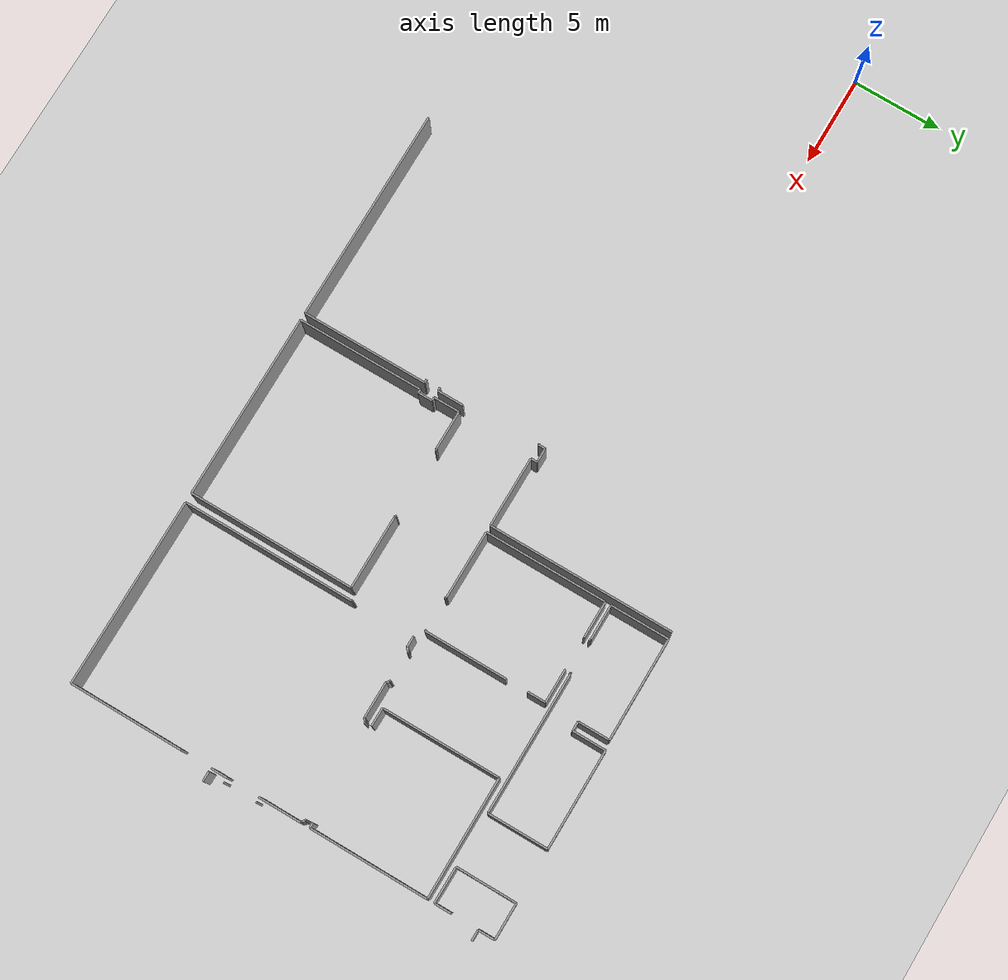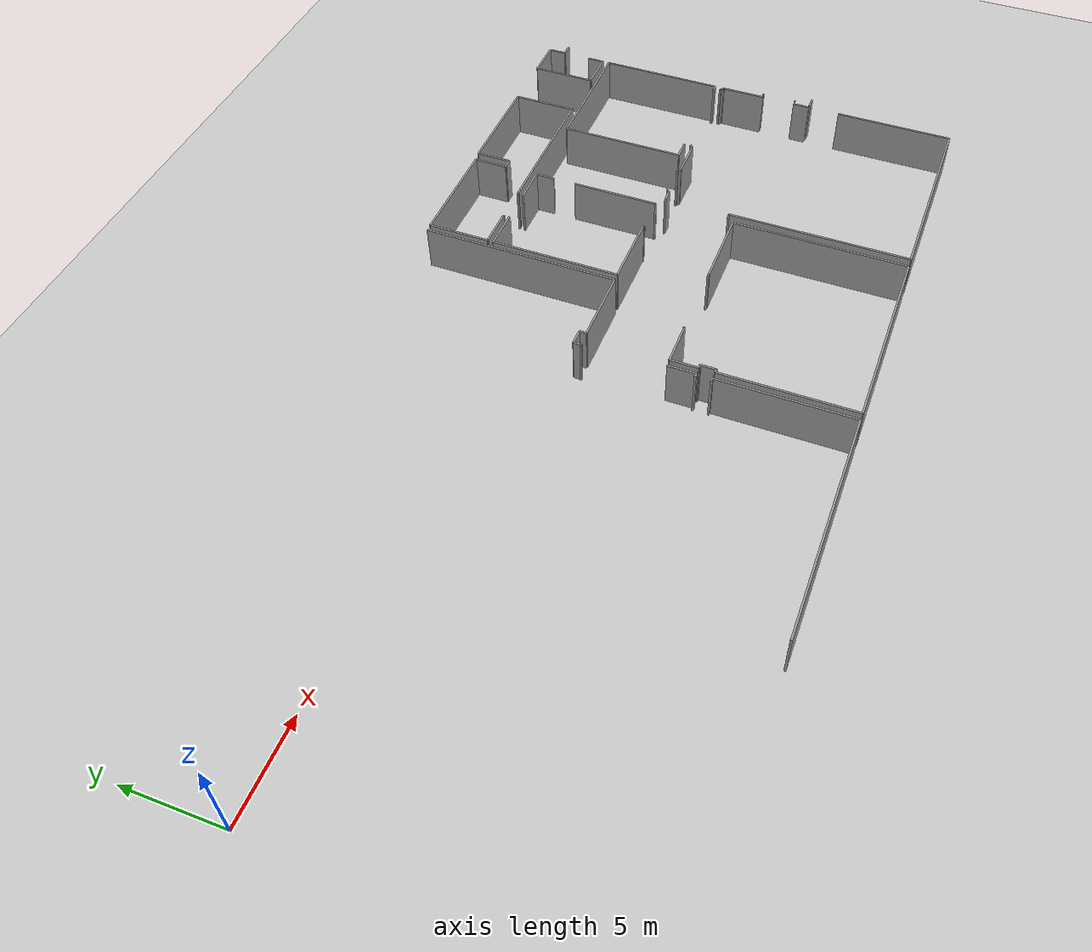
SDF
<sdf version="1.6">
 <world name="default">
  <model name="ground_plane">
   <static>1</static>
   <link name="link">
    <collision name="collision">
     <geometry><plane><normal>0 0 1</normal><size>100 100</size></plane></geometry>
     <surface><friction><ode><mu>100</mu><mu2>50</mu2></ode></friction></surface>
    </collision>
    <visual name="visual">
     <cast_shadows>0</cast_shadows>
     <geometry><plane><normal>0 0 1</normal><size>100 100</size></plane></geometry>
     <material>
      <script><uri>file://media/materials/scripts/gazebo.material</uri><name>Gazebo/Grey</name></script>
     </material>
    </visual>
   </link>
  </model>
  <model name="0510030939_A_40_1_103">
   <static>1</static>
   <link name="Wall_137">
    <collision name="Wall_137_Collision">
     <geometry><box><size>10.3824379706 0.1 2.5</size></box></geometry>
     <pose>5.19121898529 0 1.25 0 0 0</pose>
    </collision>
    <visual name="Wall_137_Visual">
     <pose>5.19121898529 0 1.25 0 0 0</pose>
     <geometry><box><size>10.3824379706 0.1 2.5</size></box></geometry>
     <material>
      <script><uri>file://media/materials/scripts/gazebo.material</uri><name>Gazebo/Grey</name></script>
      <ambient>1 1 1 1</ambient>
     </material>
    </visual>
    <pose>87.8816024399 -11.3761794326 0 0 0 -1.57079632679</pose>
   </link>
   <link name="Wall_138">
    <collision name="Wall_138_Collision">
     <geometry><box><size>3.91701877561 0.1 2.5</size></box></geometry>
     <pose>1.95850938781 0 1.25 0 0 0</pose>
    </collision>
    <visual name="Wall_138_Visual">
     <pose>1.95850938781 0 1.25 0 0 0</pose>
     <geometry><box><size>3.91701877561 0.1 2.5</size></box></geometry>
     <material>
      <script><uri>file://media/materials/scripts/gazebo.material</uri><name>Gazebo/Grey</name></script>
      <ambient>1 1 1 1</ambient>
     </material>
    </visual>
    <pose>87.8816024399 -21.7586174032 0 0 0 3.14159265359</pose>
   </link>
   <link name="Wall_139">
    <collision name="Wall_139_Collision">
     <geometry><box><size>0.358992280078 0.1 2.5</size></box></geometry>
     <pose>0.179496140039 0 1.25 0 0 0</pose>
    </collision>
    <visual name="Wall_139_Visual">
     <pose>0.179496140039 0 1.25 0 0 0</pose>
     <geometry><box><size>0.358992280078 0.1 2.5</size></box></geometry>
     <material>
      <script><uri>file://media/materials/scripts/gazebo.material</uri><name>Gazebo/Grey</name></script>
      <ambient>1 1 1 1</ambient>
     </material>
    </visual>
    <pose>83.9645836643 -21.7586174032 0 0 0 1.57079632679</pose>
   </link>
   <link name="Wall_140">
    <collision name="Wall_140_Collision">
     <geometry><box><size>0.791562092957 0.1 2.5</size></box></geometry>
     <pose>0.395781046478 0 1.25 0 0 0</pose>
    </collision>
    <visual name="Wall_140_Visual">
     <pose>0.395781046478 0 1.25 0 0 0</pose>
     <geometry><box><size>0.791562092957 0.1 2.5</size></box></geometry>
     <material>
      <script><uri>file://media/materials/scripts/gazebo.material</uri><name>Gazebo/Grey</name></script>
      <ambient>1 1 1 1</ambient>
     </material>
    </visual>
    <pose>83.9645836643 -21.3996251231 0 0 0 3.14159265359</pose>
   </link>
   <link name="Wall_141">
    <collision name="Wall_141_Collision">
     <geometry><box><size>0.39063443149 0.1 2.5</size></box></geometry>
     <pose>0.195317215745 0 1.25 0 0 0</pose>
    </collision>
    <visual name="Wall_141_Visual">
     <pose>0.195317215745 0 1.25 0 0 0</pose>
     <geometry><box><size>0.39063443149 0.1 2.5</size></box></geometry>
     <material>
      <script><uri>file://media/materials/scripts/gazebo.material</uri><name>Gazebo/Grey</name></script>
      <ambient>1 1 1 1</ambient>
     </material>
    </visual>
    <pose>83.1730215713 -21.3996251231 0 0 0 -1.57079632679</pose>
   </link>
   <link name="Wall_142">
    <collision name="Wall_142_Collision">
     <geometry><box><size>0.0787876862471 0.1 2.5</size></box></geometry>
     <pose>0.0393938431236 0 1.25 0 0 0</pose>
    </collision>
    <visual name="Wall_142_Visual">
     <pose>0.0393938431236 0 1.25 0 0 0</pose>
     <geometry><box><size>0.0787876862471 0.1 2.5</size></box></geometry>
     <material>
      <script><uri>file://media/materials/scripts/gazebo.material</uri><name>Gazebo/Grey</name></script>
      <ambient>1 1 1 1</ambient>
     </material>
    </visual>
    <pose>83.1730215713 -21.7902595546 0 0 0 3.14159265359</pose>
   </link>
   <link name="Wall_158">
    <collision name="Wall_158_Collision">
     <geometry><box><size>1.45579311879 0.1 2.5</size></box></geometry>
     <pose>0.727896559393 0 1.25 0 0 0</pose>
    </collision>
    <visual name="Wall_158_Visual">
     <pose>0.727896559393 0 1.25 0 0 0</pose>
     <geometry><box><size>1.45579311879 0.1 2.5</size></box></geometry>
     <material>
      <script><uri>file://media/materials/scripts/gazebo.material</uri><name>Gazebo/Grey</name></script>
      <ambient>1 1 1 1</ambient>
     </material>
    </visual>
    <pose>83.3735489405 -26.0428884582 0 0 0 -1.57079632679</pose>
   </link>
   <link name="Wall_159">
    <collision name="Wall_159_Collision">
     <geometry><box><size>0.206499984115 0.1 2.5</size></box></geometry>
     <pose>0.103249992058 0 1.25 0 0 0</pose>
    </collision>
    <visual name="Wall_159_Visual">
     <pose>0.103249992058 0 1.25 0 0 0</pose>
     <geometry><box><size>0.206499984115 0.1 2.5</size></box></geometry>
     <material>
      <script><uri>file://media/materials/scripts/gazebo.material</uri><name>Gazebo/Grey</name></script>
      <ambient>1 1 1 1</ambient>
     </material>
    </visual>
    <pose>83.3735489405 -27.498681577 0 0 0 3.14159265359</pose>
   </link>
   <link name="Wall_161">
    <collision name="Wall_161_Collision">
     <geometry><box><size>0.191504908346 0.1 2.5</size></box></geometry>
     <pose>0.0957524541729 0 1.25 0 0 0</pose>
    </collision>
    <visual name="Wall_161_Visual">
     <pose>0.0957524541729 0 1.25 0 0 0</pose>
     <geometry><box><size>0.191504908346 0.1 2.5</size></box></geometry>
     <material>
      <script><uri>file://media/materials/scripts/gazebo.material</uri><name>Gazebo/Grey</name></script>
      <ambient>1 1 1 1</ambient>
     </material>
    </visual>
    <pose>83.1670489564 -28.2861772088 0 0 0 0.0</pose>
   </link>
   <link name="Wall_162">
    <collision name="Wall_162_Collision">
     <geometry><box><size>7.01083330686 0.1 2.5</size></box></geometry>
     <pose>3.50541665343 0 1.25 0 0 0</pose>
    </collision>
    <visual name="Wall_162_Visual">
     <pose>3.50541665343 0 1.25 0 0 0</pose>
     <geometry><box><size>7.01083330686 0.1 2.5</size></box></geometry>
     <material>
      <script><uri>file://media/materials/scripts/gazebo.material</uri><name>Gazebo/Grey</name></script>
      <ambient>1 1 1 1</ambient>
     </material>
    </visual>
    <pose>83.3585538647 -28.2861772088 0 0 0 -1.57079632679</pose>
   </link>
   <link name="Wall_163">
    <collision name="Wall_163_Collision">
     <geometry><box><size>11.9762366718 0.1 2.5</size></box></geometry>
     <pose>5.98811833591 0 1.25 0 0 0</pose>
    </collision>
    <visual name="Wall_163_Visual">
     <pose>5.98811833591 0 1.25 0 0 0</pose>
     <geometry><box><size>11.9762366718 0.1 2.5</size></box></geometry>
     <material>
      <script><uri>file://media/materials/scripts/gazebo.material</uri><name>Gazebo/Grey</name></script>
      <ambient>1 1 1 1</ambient>
     </material>
    </visual>
    <pose>83.3585538647 -35.2970105156 0 0 0 -3.14149715679</pose>
   </link>
   <link name="Wall_164">
    <collision name="Wall_164_Collision">
     <geometry><box><size>7.02061822918 0.1 2.5</size></box></geometry>
     <pose>3.51030911459 0 1.25 0 0 0</pose>
    </collision>
    <visual name="Wall_164_Visual">
     <pose>3.51030911459 0 1.25 0 0 0</pose>
     <geometry><box><size>7.02061822918 0.1 2.5</size></box></geometry>
     <material>
      <script><uri>file://media/materials/scripts/gazebo.material</uri><name>Gazebo/Grey</name></script>
      <ambient>1 1 1 1</ambient>
     </material>
    </visual>
    <pose>83.7650729104 -35.3029831305 0 0 0 1.57079632679</pose>
   </link>
   <link name="Wall_165">
    <collision name="Wall_165_Collision">
     <geometry><box><size>0.189471677733 0.1 2.5</size></box></geometry>
     <pose>0.0947358388665 0 1.25 0 0 0</pose>
    </collision>
    <visual name="Wall_165_Visual">
     <pose>0.0947358388665 0 1.25 0 0 0</pose>
     <geometry><box><size>0.189471677733 0.1 2.5</size></box></geometry>
     <material>
      <script><uri>file://media/materials/scripts/gazebo.material</uri><name>Gazebo/Grey</name></script>
      <ambient>1 1 1 1</ambient>
     </material>
    </visual>
    <pose>83.7650729104 -28.2823649014 0 0 0 0.0</pose>
   </link>
   <link name="Wall_166">
    <collision name="Wall_166_Collision">
     <geometry><box><size>0.786860247165 0.1 2.5</size></box></geometry>
     <pose>0.393430123582 0 1.25 0 0 0</pose>
    </collision>
    <visual name="Wall_166_Visual">
     <pose>0.393430123582 0 1.25 0 0 0</pose>
     <geometry><box><size>0.786860247165 0.1 2.5</size></box></geometry>
     <material>
      <script><uri>file://media/materials/scripts/gazebo.material</uri><name>Gazebo/Grey</name></script>
      <ambient>1 1 1 1</ambient>
     </material>
    </visual>
    <pose>83.9545445881 -28.2823649014 0 0 0 1.57079632679</pose>
   </link>
   <link name="Wall_167">
    <collision name="Wall_167_Collision">
     <geometry><box><size>0.200400292277 0.1 2.5</size></box></geometry>
     <pose>0.100200146138 0 1.25 0 0 0</pose>
    </collision>
    <visual name="Wall_167_Visual">
     <pose>0.100200146138 0 1.25 0 0 0</pose>
     <geometry><box><size>0.200400292277 0.1 2.5</size></box></geometry>
     <material>
      <script><uri>file://media/materials/scripts/gazebo.material</uri><name>Gazebo/Grey</name></script>
      <ambient>1 1 1 1</ambient>
     </material>
    </visual>
    <pose>83.9545445881 -27.4955046542 0 0 0 3.14159265359</pose>
   </link>
   <link name="Wall_168">
    <collision name="Wall_168_Collision">
     <geometry><box><size>1.45096419608 0.1 2.5</size></box></geometry>
     <pose>0.72548209804 0 1.25 0 0 0</pose>
    </collision>
    <visual name="Wall_168_Visual">
     <pose>0.72548209804 0 1.25 0 0 0</pose>
     <geometry><box><size>1.45096419608 0.1 2.5</size></box></geometry>
     <material>
      <script><uri>file://media/materials/scripts/gazebo.material</uri><name>Gazebo/Grey</name></script>
      <ambient>1 1 1 1</ambient>
     </material>
    </visual>
    <pose>83.7541442958 -27.4955046542 0 0 0 1.57079632679</pose>
   </link>
   <link name="Wall_169">
    <collision name="Wall_169_Collision">
     <geometry><box><size>2.20376783048 0.1 2.5</size></box></geometry>
     <pose>1.10188391524 0 1.25 0 0 0</pose>
    </collision>
    <visual name="Wall_169_Visual">
     <pose>1.10188391524 0 1.25 0 0 0</pose>
     <geometry><box><size>2.20376783048 0.1 2.5</size></box></geometry>
     <material>
      <script><uri>file://media/materials/scripts/gazebo.material</uri><name>Gazebo/Grey</name></script>
      <ambient>1 1 1 1</ambient>
     </material>
    </visual>
    <pose>83.7541442958 -26.0445404581 0 0 0 0.0</pose>
   </link>
   <link name="Wall_170">
    <collision name="Wall_170_Collision">
     <geometry><box><size>0.0257966134003 0.1 2.5</size></box></geometry>
     <pose>0.0128983067001 0 1.25 0 0 0</pose>
    </collision>
    <visual name="Wall_170_Visual">
     <pose>0.0128983067001 0 1.25 0 0 0</pose>
     <geometry><box><size>0.0257966134003 0.1 2.5</size></box></geometry>
     <material>
      <script><uri>file://media/materials/scripts/gazebo.material</uri><name>Gazebo/Grey</name></script>
      <ambient>1 1 1 1</ambient>
     </material>
    </visual>
    <pose>85.9579121263 -26.0445404581 0 0 0 1.57079632679</pose>
   </link>
   <link name="Wall_171">
    <collision name="Wall_171_Collision">
     <geometry><box><size>0.0888267623979 0.1 2.5</size></box></geometry>
     <pose>0.044413381199 0 1.25 0 0 0</pose>
    </collision>
    <visual name="Wall_171_Visual">
     <pose>0.044413381199 0 1.25 0 0 0</pose>
     <geometry><box><size>0.0888267623979 0.1 2.5</size></box></geometry>
     <material>
      <script><uri>file://media/materials/scripts/gazebo.material</uri><name>Gazebo/Grey</name></script>
      <ambient>1 1 1 1</ambient>
     </material>
    </visual>
    <pose>85.9579121263 -26.0187438447 0 0 0 0.0</pose>
   </link>
   <link name="Wall_172">
    <collision name="Wall_172_Collision">
     <geometry><box><size>0.0772627632875 0.1 2.5</size></box></geometry>
     <pose>0.0386313816437 0 1.25 0 0 0</pose>
    </collision>
    <visual name="Wall_172_Visual">
     <pose>0.0386313816437 0 1.25 0 0 0</pose>
     <geometry><box><size>0.0772627632875 0.1 2.5</size></box></geometry>
     <material>
      <script><uri>file://media/materials/scripts/gazebo.material</uri><name>Gazebo/Grey</name></script>
      <ambient>1 1 1 1</ambient>
     </material>
    </visual>
    <pose>89.814696445 -26.0187438447 0 0 0 0.0</pose>
   </link>
   <link name="Wall_173">
    <collision name="Wall_173_Collision">
     <geometry><box><size>0.018934460082 0.1 2.5</size></box></geometry>
     <pose>0.00946723004099 0 1.25 0 0 0</pose>
    </collision>
    <visual name="Wall_173_Visual">
     <pose>0.00946723004099 0 1.25 0 0 0</pose>
     <geometry><box><size>0.018934460082 0.1 2.5</size></box></geometry>
     <material>
      <script><uri>file://media/materials/scripts/gazebo.material</uri><name>Gazebo/Grey</name></script>
      <ambient>1 1 1 1</ambient>
     </material>
    </visual>
    <pose>89.8919592083 -26.0187438447 0 0 0 -1.57079632679</pose>
   </link>
   <link name="Wall_174">
    <collision name="Wall_174_Collision">
     <geometry><box><size>4.14575721956 0.1 2.5</size></box></geometry>
     <pose>2.07287860978 0 1.25 0 0 0</pose>
    </collision>
    <visual name="Wall_174_Visual">
     <pose>2.07287860978 0 1.25 0 0 0</pose>
     <geometry><box><size>4.14575721956 0.1 2.5</size></box></geometry>
     <material>
      <script><uri>file://media/materials/scripts/gazebo.material</uri><name>Gazebo/Grey</name></script>
      <ambient>1 1 1 1</ambient>
     </material>
    </visual>
    <pose>89.8919592083 -26.0376783048 0 0 0 0.0</pose>
   </link>
   <link name="Wall_175">
    <collision name="Wall_175_Collision">
     <geometry><box><size>9.26047590304 0.1 2.5</size></box></geometry>
     <pose>4.63023795152 0 1.25 0 0 0</pose>
    </collision>
    <visual name="Wall_175_Visual">
     <pose>4.63023795152 0 1.25 0 0 0</pose>
     <geometry><box><size>9.26047590304 0.1 2.5</size></box></geometry>
     <material>
      <script><uri>file://media/materials/scripts/gazebo.material</uri><name>Gazebo/Grey</name></script>
      <ambient>1 1 1 1</ambient>
     </material>
    </visual>
    <pose>94.0377164279 -26.0376783048 0 0 0 -1.57079632679</pose>
   </link>
   <link name="Wall_176">
    <collision name="Wall_176_Collision">
     <geometry><box><size>10.2726446525 0.1 2.5</size></box></geometry>
     <pose>5.13632232623 0 1.25 0 0 0</pose>
    </collision>
    <visual name="Wall_176_Visual">
     <pose>5.13632232623 0 1.25 0 0 0</pose>
     <geometry><box><size>10.2726446525 0.1 2.5</size></box></geometry>
     <material>
      <script><uri>file://media/materials/scripts/gazebo.material</uri><name>Gazebo/Grey</name></script>
      <ambient>1 1 1 1</ambient>
     </material>
    </visual>
    <pose>94.0377164279 -35.2981542078 0 0 0 -3.14112257767</pose>
   </link>
   <link name="Wall_177">
    <collision name="Wall_177_Collision">
     <geometry><box><size>6.79518378499 0.1 2.5</size></box></geometry>
     <pose>3.39759189249 0 1.25 0 0 0</pose>
    </collision>
    <visual name="Wall_177_Visual">
     <pose>3.39759189249 0 1.25 0 0 0</pose>
     <geometry><box><size>6.79518378499 0.1 2.5</size></box></geometry>
     <material>
      <script><uri>file://media/materials/scripts/gazebo.material</uri><name>Gazebo/Grey</name></script>
      <ambient>1 1 1 1</ambient>
     </material>
    </visual>
    <pose>88.2587667186 -21.7554404804 0 0 0 1.57079632679</pose>
   </link>
   <link name="Wall_178">
    <collision name="Wall_178_Collision">
     <geometry><box><size>2.0606792261 0.1 2.5</size></box></geometry>
     <pose>1.03033961305 0 1.25 0 0 0</pose>
    </collision>
    <visual name="Wall_178_Visual">
     <pose>1.03033961305 0 1.25 0 0 0</pose>
     <geometry><box><size>2.0606792261 0.1 2.5</size></box></geometry>
     <material>
      <script><uri>file://media/materials/scripts/gazebo.material</uri><name>Gazebo/Grey</name></script>
      <ambient>1 1 1 1</ambient>
     </material>
    </visual>
    <pose>88.2587667186 -14.9602566954 0 0 0 0.0</pose>
   </link>
   <link name="Wall_179">
    <collision name="Wall_179_Collision">
     <geometry><box><size>1.88721923944 0.1 2.5</size></box></geometry>
     <pose>0.943609619722 0 1.25 0 0 0</pose>
    </collision>
    <visual name="Wall_179_Visual">
     <pose>0.943609619722 0 1.25 0 0 0</pose>
     <geometry><box><size>1.88721923944 0.1 2.5</size></box></geometry>
     <material>
      <script><uri>file://media/materials/scripts/gazebo.material</uri><name>Gazebo/Grey</name></script>
      <ambient>1 1 1 1</ambient>
     </material>
    </visual>
    <pose>92.1168218064 -14.9602566954 0 0 0 0.0</pose>
   </link>
   <link name="Wall_180">
    <collision name="Wall_180_Collision">
     <geometry><box><size>1.02373161356 0.1 2.5</size></box></geometry>
     <pose>0.51186580678 0 1.25 0 0 0</pose>
    </collision>
    <visual name="Wall_180_Visual">
     <pose>0.51186580678 0 1.25 0 0 0</pose>
     <geometry><box><size>1.02373161356 0.1 2.5</size></box></geometry>
     <material>
      <script><uri>file://media/materials/scripts/gazebo.material</uri><name>Gazebo/Grey</name></script>
      <ambient>1 1 1 1</ambient>
     </material>
    </visual>
    <pose>94.0040410458 -14.9602566954 0 0 0 -1.57079632679</pose>
   </link>
   <link name="Wall_181">
    <collision name="Wall_181_Collision">
     <geometry><box><size>4.61136702989 0.1 2.5</size></box></geometry>
     <pose>2.30568351495 0 1.25 0 0 0</pose>
    </collision>
    <visual name="Wall_181_Visual">
     <pose>2.30568351495 0 1.25 0 0 0</pose>
     <geometry><box><size>4.61136702989 0.1 2.5</size></box></geometry>
     <material>
      <script><uri>file://media/materials/scripts/gazebo.material</uri><name>Gazebo/Grey</name></script>
      <ambient>1 1 1 1</ambient>
     </material>
    </visual>
    <pose>94.0040410458 -17.1935063697 0 0 0 -1.57079632679</pose>
   </link>
   <link name="Wall_182">
    <collision name="Wall_182_Collision">
     <geometry><box><size>0.0789147631604 0.1 2.5</size></box></geometry>
     <pose>0.0394573815802 0 1.25 0 0 0</pose>
    </collision>
    <visual name="Wall_182_Visual">
     <pose>0.0394573815802 0 1.25 0 0 0</pose>
     <geometry><box><size>0.0789147631604 0.1 2.5</size></box></geometry>
     <material>
      <script><uri>file://media/materials/scripts/gazebo.material</uri><name>Gazebo/Grey</name></script>
      <ambient>1 1 1 1</ambient>
     </material>
    </visual>
    <pose>94.0040410458 -21.8048733996 0 0 0 3.14159265359</pose>
   </link>
   <link name="Wall_183">
    <collision name="Wall_183_Collision">
     <geometry><box><size>0.0754836865013 0.1 2.5</size></box></geometry>
     <pose>0.0377418432506 0 1.25 0 0 0</pose>
    </collision>
    <visual name="Wall_183_Visual">
     <pose>0.0377418432506 0 1.25 0 0 0</pose>
     <geometry><box><size>0.0754836865013 0.1 2.5</size></box></geometry>
     <material>
      <script><uri>file://media/materials/scripts/gazebo.material</uri><name>Gazebo/Grey</name></script>
      <ambient>1 1 1 1</ambient>
     </material>
    </visual>
    <pose>92.137916574 -21.8048733996 0 0 0 3.14159265359</pose>
   </link>
   <link name="Wall_184">
    <collision name="Wall_184_Collision">
     <geometry><box><size>0.0409187660832 0.1 2.5</size></box></geometry>
     <pose>0.0204593830416 0 1.25 0 0 0</pose>
    </collision>
    <visual name="Wall_184_Visual">
     <pose>0.0204593830416 0 1.25 0 0 0</pose>
     <geometry><box><size>0.0409187660832 0.1 2.5</size></box></geometry>
     <material>
      <script><uri>file://media/materials/scripts/gazebo.material</uri><name>Gazebo/Grey</name></script>
      <ambient>1 1 1 1</ambient>
     </material>
    </visual>
    <pose>92.0624328875 -21.8048733996 0 0 0 1.57079632679</pose>
   </link>
   <link name="Wall_185">
    <collision name="Wall_185_Collision">
     <geometry><box><size>3.80367569801 0.1 2.5</size></box></geometry>
     <pose>1.901837849 0 1.25 0 0 0</pose>
    </collision>
    <visual name="Wall_185_Visual">
     <pose>1.901837849 0 1.25 0 0 0</pose>
     <geometry><box><size>3.80367569801 0.1 2.5</size></box></geometry>
     <material>
      <script><uri>file://media/materials/scripts/gazebo.material</uri><name>Gazebo/Grey</name></script>
      <ambient>1 1 1 1</ambient>
     </material>
    </visual>
    <pose>92.0624328875 -21.7639546335 0 0 0 3.13935425027</pose>
   </link>
   <link name="Wall_186">
    <collision name="Wall_186_Collision">
     <geometry><box><size>3.26397051816 0.1 2.5</size></box></geometry>
     <pose>1.63198525908 0 1.25 0 0 0</pose>
    </collision>
    <visual name="Wall_186_Visual">
     <pose>1.63198525908 0 1.25 0 0 0</pose>
     <geometry><box><size>3.26397051816 0.1 2.5</size></box></geometry>
     <material>
      <script><uri>file://media/materials/scripts/gazebo.material</uri><name>Gazebo/Grey</name></script>
      <ambient>1 1 1 1</ambient>
     </material>
    </visual>
    <pose>88.2619436414 -14.6335419513 0 0 0 1.57079632679</pose>
   </link>
   <link name="Wall_187">
    <collision name="Wall_187_Collision">
     <geometry><box><size>5.73231248213 0.1 2.5</size></box></geometry>
     <pose>2.86615624106 0 1.25 0 0 0</pose>
    </collision>
    <visual name="Wall_187_Visual">
     <pose>2.86615624106 0 1.25 0 0 0</pose>
     <geometry><box><size>5.73231248213 0.1 2.5</size></box></geometry>
     <material>
      <script><uri>file://media/materials/scripts/gazebo.material</uri><name>Gazebo/Grey</name></script>
      <ambient>1 1 1 1</ambient>
     </material>
    </visual>
    <pose>88.2619436414 -11.3695714331 0 0 0 0.0</pose>
   </link>
   <link name="Wall_188">
    <collision name="Wall_188_Collision">
     <geometry><box><size>1.75937986466 0.1 2.5</size></box></geometry>
     <pose>0.879689932332 0 1.25 0 0 0</pose>
    </collision>
    <visual name="Wall_188_Visual">
     <pose>0.879689932332 0 1.25 0 0 0</pose>
     <geometry><box><size>1.75937986466 0.1 2.5</size></box></geometry>
     <material>
      <script><uri>file://media/materials/scripts/gazebo.material</uri><name>Gazebo/Grey</name></script>
      <ambient>1 1 1 1</ambient>
     </material>
    </visual>
    <pose>93.9942561235 -11.3695714331 0 0 0 -1.57079632679</pose>
   </link>
   <link name="Wall_189">
    <collision name="Wall_189_Collision">
     <geometry><box><size>0.52152365219 0.1 2.5</size></box></geometry>
     <pose>0.260761826095 0 1.25 0 0 0</pose>
    </collision>
    <visual name="Wall_189_Visual">
     <pose>0.260761826095 0 1.25 0 0 0</pose>
     <geometry><box><size>0.52152365219 0.1 2.5</size></box></geometry>
     <material>
      <script><uri>file://media/materials/scripts/gazebo.material</uri><name>Gazebo/Grey</name></script>
      <ambient>1 1 1 1</ambient>
     </material>
    </visual>
    <pose>93.9942561235 -13.1289512978 0 0 0 0.0</pose>
   </link>
   <link name="Wall_190">
    <collision name="Wall_190_Collision">
     <geometry><box><size>1.85468754964 0.1 2.5</size></box></geometry>
     <pose>0.92734377482 0 1.25 0 0 0</pose>
    </collision>
    <visual name="Wall_190_Visual">
     <pose>0.92734377482 0 1.25 0 0 0</pose>
     <geometry><box><size>1.85468754964 0.1 2.5</size></box></geometry>
     <material>
      <script><uri>file://media/materials/scripts/gazebo.material</uri><name>Gazebo/Grey</name></script>
      <ambient>1 1 1 1</ambient>
     </material>
    </visual>
    <pose>94.5157797757 -13.1289512978 0 0 0 1.57079632679</pose>
   </link>
   <link name="Wall_191">
    <collision name="Wall_191_Collision">
     <geometry><box><size>5.50636973028 0.1 2.5</size></box></geometry>
     <pose>2.75318486514 0 1.25 0 0 0</pose>
    </collision>
    <visual name="Wall_191_Visual">
     <pose>2.75318486514 0 1.25 0 0 0</pose>
     <geometry><box><size>5.50636973028 0.1 2.5</size></box></geometry>
     <material>
      <script><uri>file://media/materials/scripts/gazebo.material</uri><name>Gazebo/Grey</name></script>
      <ambient>1 1 1 1</ambient>
     </material>
    </visual>
    <pose>94.5157797757 -11.2742637481 0 0 0 0.0</pose>
   </link>
   <link name="Wall_192">
    <collision name="Wall_192_Collision">
     <geometry><box><size>3.35788035709 0.1 2.5</size></box></geometry>
     <pose>1.67894017854 0 1.25 0 0 0</pose>
    </collision>
    <visual name="Wall_192_Visual">
     <pose>1.67894017854 0 1.25 0 0 0</pose>
     <geometry><box><size>3.35788035709 0.1 2.5</size></box></geometry>
     <material>
      <script><uri>file://media/materials/scripts/gazebo.material</uri><name>Gazebo/Grey</name></script>
      <ambient>1 1 1 1</ambient>
     </material>
    </visual>
    <pose>100.022149506 -11.2742637481 0 0 0 -1.57079632679</pose>
   </link>
   <link name="Wall_193">
    <collision name="Wall_193_Collision">
     <geometry><box><size>7.83136893605 0.1 2.5</size></box></geometry>
     <pose>3.91568446802 0 1.25 0 0 0</pose>
    </collision>
    <visual name="Wall_193_Visual">
     <pose>3.91568446802 0 1.25 0 0 0</pose>
     <geometry><box><size>7.83136893605 0.1 2.5</size></box></geometry>
     <material>
      <script><uri>file://media/materials/scripts/gazebo.material</uri><name>Gazebo/Grey</name></script>
      <ambient>1 1 1 1</ambient>
     </material>
    </visual>
    <pose>100.022149506 -14.6321441052 0 0 0 3.14159265359</pose>
   </link>
   <link name="Wall_194">
    <collision name="Wall_194_Collision">
     <geometry><box><size>0.0299901515392 0.1 2.5</size></box></geometry>
     <pose>0.0149950757696 0 1.25 0 0 0</pose>
    </collision>
    <visual name="Wall_194_Visual">
     <pose>0.0149950757696 0 1.25 0 0 0</pose>
     <geometry><box><size>0.0299901515392 0.1 2.5</size></box></geometry>
     <material>
      <script><uri>file://media/materials/scripts/gazebo.material</uri><name>Gazebo/Grey</name></script>
      <ambient>1 1 1 1</ambient>
     </material>
    </visual>
    <pose>92.1907805699 -14.6321441052 0 0 0 -1.57079632679</pose>
   </link>
   <link name="Wall_195">
    <collision name="Wall_195_Collision">
     <geometry><box><size>0.0934015312768 0.1 2.5</size></box></geometry>
     <pose>0.0467007656384 0 1.25 0 0 0</pose>
    </collision>
    <visual name="Wall_195_Visual">
     <pose>0.0467007656384 0 1.25 0 0 0</pose>
     <geometry><box><size>0.0934015312768 0.1 2.5</size></box></geometry>
     <material>
      <script><uri>file://media/materials/scripts/gazebo.material</uri><name>Gazebo/Grey</name></script>
      <ambient>1 1 1 1</ambient>
     </material>
    </visual>
    <pose>92.1907805699 -14.6621342568 0 0 0 3.14159265359</pose>
   </link>
   <link name="Wall_196">
    <collision name="Wall_196_Collision">
     <geometry><box><size>0.102423992121 0.1 2.5</size></box></geometry>
     <pose>0.0512119960606 0 1.25 0 0 0</pose>
    </collision>
    <visual name="Wall_196_Visual">
     <pose>0.0512119960606 0 1.25 0 0 0</pose>
     <geometry><box><size>0.102423992121 0.1 2.5</size></box></geometry>
     <material>
      <script><uri>file://media/materials/scripts/gazebo.material</uri><name>Gazebo/Grey</name></script>
      <ambient>1 1 1 1</ambient>
     </material>
    </visual>
    <pose>90.3194459447 -14.6621342568 0 0 0 3.14159265359</pose>
   </link>
   <link name="Wall_197">
    <collision name="Wall_197_Collision">
     <geometry><box><size>0.0287193824062 0.1 2.5</size></box></geometry>
     <pose>0.0143596912031 0 1.25 0 0 0</pose>
    </collision>
    <visual name="Wall_197_Visual">
     <pose>0.0143596912031 0 1.25 0 0 0</pose>
     <geometry><box><size>0.0287193824062 0.1 2.5</size></box></geometry>
     <material>
      <script><uri>file://media/materials/scripts/gazebo.material</uri><name>Gazebo/Grey</name></script>
      <ambient>1 1 1 1</ambient>
     </material>
    </visual>
    <pose>90.2170219525 -14.6621342568 0 0 0 1.57079632679</pose>
   </link>
   <link name="Wall_198">
    <collision name="Wall_198_Collision">
     <geometry><box><size>1.95507831528 0.1 2.5</size></box></geometry>
     <pose>0.977539157639 0 1.25 0 0 0</pose>
    </collision>
    <visual name="Wall_198_Visual">
     <pose>0.977539157639 0 1.25 0 0 0</pose>
     <geometry><box><size>1.95507831528 0.1 2.5</size></box></geometry>
     <material>
      <script><uri>file://media/materials/scripts/gazebo.material</uri><name>Gazebo/Grey</name></script>
      <ambient>1 1 1 1</ambient>
     </material>
    </visual>
    <pose>90.2170219525 -14.6334148744 0 0 0 -3.14152765521</pose>
   </link>
   <link name="Wall_199">
    <collision name="Wall_199_Collision">
     <geometry><box><size>6.61346379896 0.1 2.5</size></box></geometry>
     <pose>3.30673189948 0 1.25 0 0 0</pose>
    </collision>
    <visual name="Wall_199_Visual">
     <pose>3.30673189948 0 1.25 0 0 0</pose>
     <geometry><box><size>6.61346379896 0.1 2.5</size></box></geometry>
     <material>
      <script><uri>file://media/materials/scripts/gazebo.material</uri><name>Gazebo/Grey</name></script>
      <ambient>1 1 1 1</ambient>
     </material>
    </visual>
    <pose>98.2861517934 -21.6387838739 0 0 0 1.57079632679</pose>
   </link>
   <link name="Wall_200">
    <collision name="Wall_200_Collision">
     <geometry><box><size>6.71804809861 0.1 2.5</size></box></geometry>
     <pose>3.35902404931 0 1.25 0 0 0</pose>
    </collision>
    <visual name="Wall_200_Visual">
     <pose>3.35902404931 0 1.25 0 0 0</pose>
     <geometry><box><size>6.71804809861 0.1 2.5</size></box></geometry>
     <material>
      <script><uri>file://media/materials/scripts/gazebo.material</uri><name>Gazebo/Grey</name></script>
      <ambient>1 1 1 1</ambient>
     </material>
    </visual>
    <pose>98.2861517934 -15.025320075 0 0 0 0.0</pose>
   </link>
   <link name="Wall_201">
    <collision name="Wall_201_Collision">
     <geometry><box><size>6.61981764463 0.1 2.5</size></box></geometry>
     <pose>3.30990882231 0 1.25 0 0 0</pose>
    </collision>
    <visual name="Wall_201_Visual">
     <pose>3.30990882231 0 1.25 0 0 0</pose>
     <geometry><box><size>6.61981764463 0.1 2.5</size></box></geometry>
     <material>
      <script><uri>file://media/materials/scripts/gazebo.material</uri><name>Gazebo/Grey</name></script>
      <ambient>1 1 1 1</ambient>
     </material>
    </visual>
    <pose>105.004199892 -15.025320075 0 0 0 -1.57079632679</pose>
   </link>
   <link name="Wall_202">
    <collision name="Wall_202_Collision">
     <geometry><box><size>0.282619055183 0.1 2.5</size></box></geometry>
     <pose>0.141309527592 0 1.25 0 0 0</pose>
    </collision>
    <visual name="Wall_202_Visual">
     <pose>0.141309527592 0 1.25 0 0 0</pose>
     <geometry><box><size>0.282619055183 0.1 2.5</size></box></geometry>
     <material>
      <script><uri>file://media/materials/scripts/gazebo.material</uri><name>Gazebo/Grey</name></script>
      <ambient>1 1 1 1</ambient>
     </material>
    </visual>
    <pose>105.004199892 -21.6451377196 0 0 0 3.14159265359</pose>
   </link>
   <link name="Wall_203">
    <collision name="Wall_203_Collision">
     <geometry><box><size>1.02425962898 0.1 2.5</size></box></geometry>
     <pose>0.51212981449 0 1.25 0 0 0</pose>
    </collision>
    <visual name="Wall_203_Visual">
     <pose>0.51212981449 0 1.25 0 0 0</pose>
     <geometry><box><size>1.02425962898 0.1 2.5</size></box></geometry>
     <material>
      <script><uri>file://media/materials/scripts/gazebo.material</uri><name>Gazebo/Grey</name></script>
      <ambient>1 1 1 1</ambient>
     </material>
    </visual>
    <pose>99.3103917146 -21.6451377196 0 0 0 3.13538925922</pose>
   </link>
   <link name="Wall_204">
    <collision name="Wall_204_Collision">
     <geometry><box><size>9.64119833529 0.1 2.5</size></box></geometry>
     <pose>4.82059916765 0 1.25 0 0 0</pose>
    </collision>
    <visual name="Wall_204_Visual">
     <pose>4.82059916765 0 1.25 0 0 0</pose>
     <geometry><box><size>9.64119833529 0.1 2.5</size></box></geometry>
     <material>
      <script><uri>file://media/materials/scripts/gazebo.material</uri><name>Gazebo/Grey</name></script>
      <ambient>1 1 1 1</ambient>
     </material>
    </visual>
    <pose>94.5783016171 -35.2970105156 0 0 0 1.57079632679</pose>
   </link>
   <link name="Wall_205">
    <collision name="Wall_205_Collision">
     <geometry><box><size>0.0625218413445 0.1 2.5</size></box></geometry>
     <pose>0.0312609206722 0 1.25 0 0 0</pose>
    </collision>
    <visual name="Wall_205_Visual">
     <pose>0.0312609206722 0 1.25 0 0 0</pose>
     <geometry><box><size>0.0625218413445 0.1 2.5</size></box></geometry>
     <material>
      <script><uri>file://media/materials/scripts/gazebo.material</uri><name>Gazebo/Grey</name></script>
      <ambient>1 1 1 1</ambient>
     </material>
    </visual>
    <pose>94.5783016171 -25.6558121803 0 0 0 3.14159265359</pose>
   </link>
   <link name="Wall_206">
    <collision name="Wall_206_Collision">
     <geometry><box><size>0.61886456778 0.1 2.5</size></box></geometry>
     <pose>0.30943228389 0 1.25 0 0 0</pose>
    </collision>
    <visual name="Wall_206_Visual">
     <pose>0.30943228389 0 1.25 0 0 0</pose>
     <geometry><box><size>0.61886456778 0.1 2.5</size></box></geometry>
     <material>
      <script><uri>file://media/materials/scripts/gazebo.material</uri><name>Gazebo/Grey</name></script>
      <ambient>1 1 1 1</ambient>
     </material>
    </visual>
    <pose>94.5157797757 -22.1596721416 0 0 0 0.0</pose>
   </link>
   <link name="Wall_207">
    <collision name="Wall_207_Collision">
     <geometry><box><size>0.212077320088 0.1 2.5</size></box></geometry>
     <pose>0.106038660044 0 1.25 0 0 0</pose>
    </collision>
    <visual name="Wall_207_Visual">
     <pose>0.106038660044 0 1.25 0 0 0</pose>
     <geometry><box><size>0.212077320088 0.1 2.5</size></box></geometry>
     <material>
      <script><uri>file://media/materials/scripts/gazebo.material</uri><name>Gazebo/Grey</name></script>
      <ambient>1 1 1 1</ambient>
     </material>
    </visual>
    <pose>95.1346443435 -22.1596721416 0 0 0 0.79726201353</pose>
   </link>
   <link name="Wall_208">
    <collision name="Wall_208_Collision">
     <geometry><box><size>0.0758649172412 0.1 2.5</size></box></geometry>
     <pose>0.0379324586206 0 1.25 0 0 0</pose>
    </collision>
    <visual name="Wall_208_Visual">
     <pose>0.0379324586206 0 1.25 0 0 0</pose>
     <geometry><box><size>0.0758649172412 0.1 2.5</size></box></geometry>
     <material>
      <script><uri>file://media/materials/scripts/gazebo.material</uri><name>Gazebo/Grey</name></script>
      <ambient>1 1 1 1</ambient>
     </material>
    </visual>
    <pose>95.2828160244 -22.0079423071 0 0 0 0.0</pose>
   </link>
   <link name="Wall_209">
    <collision name="Wall_209_Collision">
     <geometry><box><size>0.0710359945357 0.1 2.5</size></box></geometry>
     <pose>0.0355179972678 0 1.25 0 0 0</pose>
    </collision>
    <visual name="Wall_209_Visual">
     <pose>0.0355179972678 0 1.25 0 0 0</pose>
     <geometry><box><size>0.0710359945357 0.1 2.5</size></box></geometry>
     <material>
      <script><uri>file://media/materials/scripts/gazebo.material</uri><name>Gazebo/Grey</name></script>
      <ambient>1 1 1 1</ambient>
     </material>
    </visual>
    <pose>96.9315118976 -22.0079423071 0 0 0 0.0</pose>
   </link>
   <link name="Wall_210">
    <collision name="Wall_210_Collision">
     <geometry><box><size>0.190064118024 0.1 2.5</size></box></geometry>
     <pose>0.095032059012 0 1.25 0 0 0</pose>
    </collision>
    <visual name="Wall_210_Visual">
     <pose>0.095032059012 0 1.25 0 0 0</pose>
     <geometry><box><size>0.190064118024 0.1 2.5</size></box></geometry>
     <material>
      <script><uri>file://media/materials/scripts/gazebo.material</uri><name>Gazebo/Grey</name></script>
      <ambient>1 1 1 1</ambient>
     </material>
    </visual>
    <pose>97.0025478921 -22.0079423071 0 0 0 -0.848318315178</pose>
   </link>
   <link name="Wall_211">
    <collision name="Wall_211_Collision">
     <geometry><box><size>2.02039584458 0.1 2.5</size></box></geometry>
     <pose>1.01019792229 0 1.25 0 0 0</pose>
    </collision>
    <visual name="Wall_211_Visual">
     <pose>1.01019792229 0 1.25 0 0 0</pose>
     <geometry><box><size>2.02039584458 0.1 2.5</size></box></geometry>
     <material>
      <script><uri>file://media/materials/scripts/gazebo.material</uri><name>Gazebo/Grey</name></script>
      <ambient>1 1 1 1</ambient>
     </material>
    </visual>
    <pose>97.1282269594 -22.1505226038 0 0 0 0.0</pose>
   </link>
   <link name="Wall_212">
    <collision name="Wall_212_Collision">
     <geometry><box><size>0.194942446436 0.1 2.5</size></box></geometry>
     <pose>0.0974712232179 0 1.25 0 0 0</pose>
    </collision>
    <visual name="Wall_212_Visual">
     <pose>0.0974712232179 0 1.25 0 0 0</pose>
     <geometry><box><size>0.194942446436 0.1 2.5</size></box></geometry>
     <material>
      <script><uri>file://media/materials/scripts/gazebo.material</uri><name>Gazebo/Grey</name></script>
      <ambient>1 1 1 1</ambient>
     </material>
    </visual>
    <pose>99.148622804 -22.1505226038 0 0 0 0.748514529029</pose>
   </link>
   <link name="Wall_213">
    <collision name="Wall_213_Collision">
     <geometry><box><size>0.0824729167328 0.1 2.5</size></box></geometry>
     <pose>0.0412364583664 0 1.25 0 0 0</pose>
    </collision>
    <visual name="Wall_213_Visual">
     <pose>0.0412364583664 0 1.25 0 0 0</pose>
     <geometry><box><size>0.0824729167328 0.1 2.5</size></box></geometry>
     <material>
      <script><uri>file://media/materials/scripts/gazebo.material</uri><name>Gazebo/Grey</name></script>
      <ambient>1 1 1 1</ambient>
     </material>
    </visual>
    <pose>99.2914572545 -22.0178543063 0 0 0 0.0</pose>
   </link>
   <link name="Wall_214">
    <collision name="Wall_214_Collision">
     <geometry><box><size>0.0823458398195 0.1 2.5</size></box></geometry>
     <pose>0.0411729199098 0 1.25 0 0 0</pose>
    </collision>
    <visual name="Wall_214_Visual">
     <pose>0.0411729199098 0 1.25 0 0 0</pose>
     <geometry><box><size>0.0823458398195 0.1 2.5</size></box></geometry>
     <material>
      <script><uri>file://media/materials/scripts/gazebo.material</uri><name>Gazebo/Grey</name></script>
      <ambient>1 1 1 1</ambient>
     </material>
    </visual>
    <pose>104.752460527 -22.0178543063 0 0 0 0.0</pose>
   </link>
   <link name="Wall_215">
    <collision name="Wall_215_Collision">
     <geometry><box><size>0.187900008026 0.1 2.5</size></box></geometry>
     <pose>0.0939500040131 0 1.25 0 0 0</pose>
    </collision>
    <visual name="Wall_215_Visual">
     <pose>0.0939500040131 0 1.25 0 0 0</pose>
     <geometry><box><size>0.187900008026 0.1 2.5</size></box></geometry>
     <material>
      <script><uri>file://media/materials/scripts/gazebo.material</uri><name>Gazebo/Grey</name></script>
      <ambient>1 1 1 1</ambient>
     </material>
    </visual>
    <pose>104.834806367 -22.0178543063 0 0 0 -0.909575211449</pose>
   </link>
   <link name="Wall_216">
    <collision name="Wall_216_Collision">
     <geometry><box><size>0.0603615338184 0.1 2.5</size></box></geometry>
     <pose>0.0301807669092 0 1.25 0 0 0</pose>
    </collision>
    <visual name="Wall_216_Visual">
     <pose>0.0301807669092 0 1.25 0 0 0</pose>
     <geometry><box><size>0.0603615338184 0.1 2.5</size></box></geometry>
     <material>
      <script><uri>file://media/materials/scripts/gazebo.material</uri><name>Gazebo/Grey</name></script>
      <ambient>1 1 1 1</ambient>
     </material>
    </visual>
    <pose>104.950192204 -22.1661530641 0 0 0 0.0</pose>
   </link>
   <link name="Wall_217">
    <collision name="Wall_217_Collision">
     <geometry><box><size>2.38980843155 0.1 2.5</size></box></geometry>
     <pose>1.19490421578 0 1.25 0 0 0</pose>
    </collision>
    <visual name="Wall_217_Visual">
     <pose>1.19490421578 0 1.25 0 0 0</pose>
     <geometry><box><size>2.38980843155 0.1 2.5</size></box></geometry>
     <material>
      <script><uri>file://media/materials/scripts/gazebo.material</uri><name>Gazebo/Grey</name></script>
      <ambient>1 1 1 1</ambient>
     </material>
    </visual>
    <pose>105.010553738 -22.1661530641 0 0 0 -1.57079632679</pose>
   </link>
   <link name="Wall_218">
    <collision name="Wall_218_Collision">
     <geometry><box><size>0.900339930743 0.1 2.5</size></box></geometry>
     <pose>0.450169965372 0 1.25 0 0 0</pose>
    </collision>
    <visual name="Wall_218_Visual">
     <pose>0.450169965372 0 1.25 0 0 0</pose>
     <geometry><box><size>0.900339930743 0.1 2.5</size></box></geometry>
     <material>
      <script><uri>file://media/materials/scripts/gazebo.material</uri><name>Gazebo/Grey</name></script>
      <ambient>1 1 1 1</ambient>
     </material>
    </visual>
    <pose>105.010553738 -26.3551164342 0 0 0 -1.57079632679</pose>
   </link>
   <link name="Wall_219">
    <collision name="Wall_219_Collision">
     <geometry><box><size>6.32360135972 0.1 2.5</size></box></geometry>
     <pose>3.16180067986 0 1.25 0 0 0</pose>
    </collision>
    <visual name="Wall_219_Visual">
     <pose>3.16180067986 0 1.25 0 0 0</pose>
     <geometry><box><size>6.32360135972 0.1 2.5</size></box></geometry>
     <material>
      <script><uri>file://media/materials/scripts/gazebo.material</uri><name>Gazebo/Grey</name></script>
      <ambient>1 1 1 1</ambient>
     </material>
    </visual>
    <pose>105.010553738 -28.9886583855 0 0 0 -1.57079632679</pose>
   </link>
   <link name="Wall_220">
    <collision name="Wall_220_Collision">
     <geometry><box><size>10.4322632658 0.1 2.5</size></box></geometry>
     <pose>5.21613163289 0 1.25 0 0 0</pose>
    </collision>
    <visual name="Wall_220_Visual">
     <pose>5.21613163289 0 1.25 0 0 0</pose>
     <geometry><box><size>10.4322632658 0.1 2.5</size></box></geometry>
     <material>
      <script><uri>file://media/materials/scripts/gazebo.material</uri><name>Gazebo/Grey</name></script>
      <ambient>1 1 1 1</ambient>
     </material>
    </visual>
    <pose>105.010553738 -35.3122597452 0 0 0 3.14013091565</pose>
   </link>
   <link name="Wall_238">
    <collision name="Wall_238_Collision">
     <geometry><box><size>0.0627759951711 0.1 2.5</size></box></geometry>
     <pose>0.0313879975855 0 1.25 0 0 0</pose>
    </collision>
    <visual name="Wall_238_Visual">
     <pose>0.0313879975855 0 1.25 0 0 0</pose>
     <geometry><box><size>0.0627759951711 0.1 2.5</size></box></geometry>
     <material>
      <script><uri>file://media/materials/scripts/gazebo.material</uri><name>Gazebo/Grey</name></script>
      <ambient>1 1 1 1</ambient>
     </material>
    </visual>
    <pose>105.281481717 -26.3842170474 0 0 0 1.57079632679</pose>
   </link>
   <link name="Wall_239">
    <collision name="Wall_239_Collision">
     <geometry><box><size>0.068621533183 0.1 2.5</size></box></geometry>
     <pose>0.0343107665915 0 1.25 0 0 0</pose>
    </collision>
    <visual name="Wall_239_Visual">
     <pose>0.0343107665915 0 1.25 0 0 0</pose>
     <geometry><box><size>0.068621533183 0.1 2.5</size></box></geometry>
     <material>
      <script><uri>file://media/materials/scripts/gazebo.material</uri><name>Gazebo/Grey</name></script>
      <ambient>1 1 1 1</ambient>
     </material>
    </visual>
    <pose>105.281481717 -24.5329605744 0 0 0 1.57079632679</pose>
   </link>
   <link name="Wall_249">
    <collision name="Wall_249_Collision">
     <geometry><box><size>0.563967341233 0.1 2.5</size></box></geometry>
     <pose>0.281983670617 0 1.25 0 0 0</pose>
    </collision>
    <visual name="Wall_249_Visual">
     <pose>0.281983670617 0 1.25 0 0 0</pose>
     <geometry><box><size>0.563967341233 0.1 2.5</size></box></geometry>
     <material>
      <script><uri>file://media/materials/scripts/gazebo.material</uri><name>Gazebo/Grey</name></script>
      <ambient>1 1 1 1</ambient>
     </material>
    </visual>
    <pose>105.189986339 -27.2596499031 0 0 0 0.0</pose>
   </link>
   <link name="Wall_298">
    <collision name="Wall_298_Collision">
     <geometry><box><size>3.36423420275 0.1 2.5</size></box></geometry>
     <pose>1.68211710138 0 1.25 0 0 0</pose>
    </collision>
    <visual name="Wall_298_Visual">
     <pose>1.68211710138 0 1.25 0 0 0</pose>
     <geometry><box><size>3.36423420275 0.1 2.5</size></box></geometry>
     <material>
      <script><uri>file://media/materials/scripts/gazebo.material</uri><name>Gazebo/Grey</name></script>
      <ambient>1 1 1 1</ambient>
     </material>
    </visual>
    <pose>102.987362201 -14.6304921053 0 0 0 1.57079632679</pose>
   </link>
   <link name="Wall_299">
    <collision name="Wall_299_Collision">
     <geometry><box><size>2.01353369127 0.1 2.5</size></box></geometry>
     <pose>1.00676684563 0 1.25 0 0 0</pose>
    </collision>
    <visual name="Wall_299_Visual">
     <pose>1.00676684563 0 1.25 0 0 0</pose>
     <geometry><box><size>2.01353369127 0.1 2.5</size></box></geometry>
     <material>
      <script><uri>file://media/materials/scripts/gazebo.material</uri><name>Gazebo/Grey</name></script>
      <ambient>1 1 1 1</ambient>
     </material>
    </visual>
    <pose>102.987362201 -11.2662579026 0 0 0 0.0</pose>
   </link>
   <link name="Wall_300">
    <collision name="Wall_300_Collision">
     <geometry><box><size>0.926644851797 0.1 2.5</size></box></geometry>
     <pose>0.463322425898 0 1.25 0 0 0</pose>
    </collision>
    <visual name="Wall_300_Visual">
     <pose>0.463322425898 0 1.25 0 0 0</pose>
     <geometry><box><size>0.926644851797 0.1 2.5</size></box></geometry>
     <material>
      <script><uri>file://media/materials/scripts/gazebo.material</uri><name>Gazebo/Grey</name></script>
      <ambient>1 1 1 1</ambient>
     </material>
    </visual>
    <pose>105.000895892 -11.2662579026 0 0 0 -1.57079632679</pose>
   </link>
   <link name="Wall_301">
    <collision name="Wall_301_Collision">
     <geometry><box><size>0.608190107062 0.1 2.5</size></box></geometry>
     <pose>0.304095053531 0 1.25 0 0 0</pose>
    </collision>
    <visual name="Wall_301_Visual">
     <pose>0.304095053531 0 1.25 0 0 0</pose>
     <geometry><box><size>0.608190107062 0.1 2.5</size></box></geometry>
     <material>
      <script><uri>file://media/materials/scripts/gazebo.material</uri><name>Gazebo/Grey</name></script>
      <ambient>1 1 1 1</ambient>
     </material>
    </visual>
    <pose>105.000895892 -12.1929027544 0 0 0 0.0</pose>
   </link>
   <link name="Wall_303">
    <collision name="Wall_303_Collision">
     <geometry><box><size>0.930965466849 0.1 2.5</size></box></geometry>
     <pose>0.465482733424 0 1.25 0 0 0</pose>
    </collision>
    <visual name="Wall_303_Visual">
     <pose>0.465482733424 0 1.25 0 0 0</pose>
     <geometry><box><size>0.930965466849 0.1 2.5</size></box></geometry>
     <material>
      <script><uri>file://media/materials/scripts/gazebo.material</uri><name>Gazebo/Grey</name></script>
      <ambient>1 1 1 1</ambient>
     </material>
    </visual>
    <pose>104.998608508 -13.7138863297 0 0 0 -1.57079632679</pose>
   </link>
   <link name="Wall_304">
    <collision name="Wall_304_Collision">
     <geometry><box><size>2.0112975681 0.1 2.5</size></box></geometry>
     <pose>1.00564878405 0 1.25 0 0 0</pose>
    </collision>
    <visual name="Wall_304_Visual">
     <pose>1.00564878405 0 1.25 0 0 0</pose>
     <geometry><box><size>2.0112975681 0.1 2.5</size></box></geometry>
     <material>
      <script><uri>file://media/materials/scripts/gazebo.material</uri><name>Gazebo/Grey</name></script>
      <ambient>1 1 1 1</ambient>
     </material>
    </visual>
    <pose>104.998608508 -14.6448517965 0 0 0 3.13445307692</pose>
   </link>
   <pose>-57.65 17.6622597452 0 0 0 0</pose>
  </model>
 </world>
</sdf>
